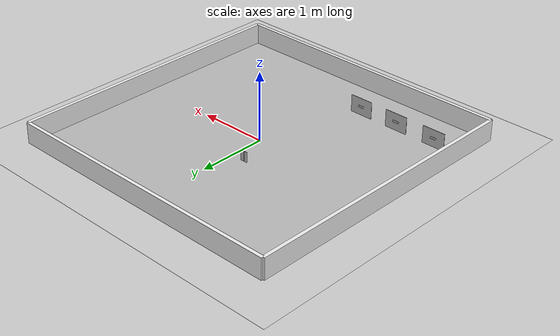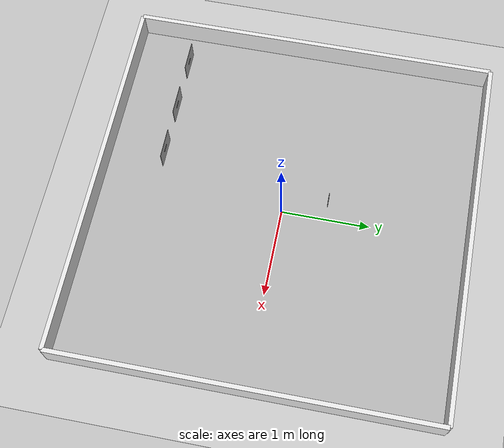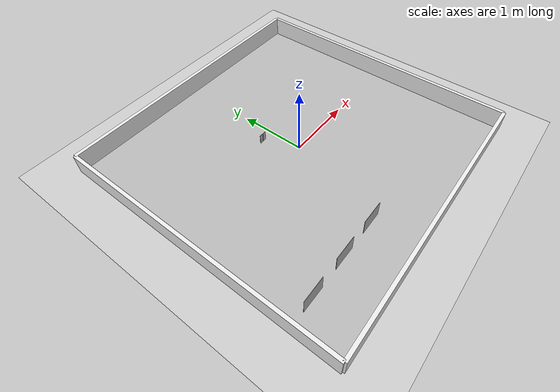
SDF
<sdf version="1.7">
 <world name="default">
  <model name="ground_plane">
   <static>1</static>
   <link name="link">
    <collision name="collision">
     <geometry><plane><normal>0 0 1</normal><size>100 100</size></plane></geometry>
     <surface><friction><ode><mu>100</mu><mu2>50</mu2></ode></friction></surface>
    </collision>
    <visual name="visual">
     <cast_shadows>0</cast_shadows>
     <geometry><plane><normal>0 0 1</normal><size>100 100</size></plane></geometry>
     <material>
      <script><uri>file://media/materials/scripts/gazebo.material</uri><name>Gazebo/Grey</name></script>
     </material>
    </visual>
   </link>
  </model>
  <model name="ground_map">
   <static>1</static>
   <pose>0 0 -0.024 0 -0 0</pose>
   <link name="link">
    <collision name="collision"><geometry><box><size>4.2 4.2 0.05</size></box></geometry></collision>
    <visual name="visual">
     <geometry><box><size>4.2 4.2 0.05</size></box></geometry>
     <material>
      <script>
       <uri>model://ground_map/materials/scripts</uri>
       <uri>model://ground_map/materials/textures</uri>
       <name>ground_map</name>
      </script>
     </material>
    </visual>
   </link>
  </model>
  <model name="vehicle_board">
   <static>1</static>
   <pose>-1.685 -1.45 0.125 0 -0 0</pose>
   <link name="board">
    <collision name="collision"><geometry><box><size>0.345 0.005 0.25</size></box></geometry></collision>
    <visual name="visual">
     <geometry><box><size>0.345 0.005 0.25</size></box></geometry>
     <material>
      <script>
       <uri>model://vehicle_board/materials/scripts</uri>
       <uri>model://vehicle_board/materials/textures</uri>
       <name>vehicle_board</name>
      </script>
     </material>
    </visual>
   </link>
  </model>
  <model name="vehicle_board_0">
   <static>1</static>
   <pose>-1.075 -1.45 0.125 0 -0 0</pose>
   <link name="board">
    <collision name="collision"><geometry><box><size>0.345 0.005 0.25</size></box></geometry></collision>
    <visual name="visual">
     <geometry><box><size>0.345 0.005 0.25</size></box></geometry>
     <material>
      <script>
       <uri>model://vehicle_board/materials/scripts</uri>
       <uri>model://vehicle_board/materials/textures</uri>
       <name>vehicle_board</name>
      </script>
     </material>
    </visual>
   </link>
  </model>
  <model name="vehicle_board_1">
   <static>1</static>
   <pose>-0.485 -1.45 0.125 0 -0 0</pose>
   <link name="board">
    <collision name="collision"><geometry><box><size>0.345 0.005 0.25</size></box></geometry></collision>
    <visual name="visual">
     <geometry><box><size>0.345 0.005 0.25</size></box></geometry>
     <material>
      <script>
       <uri>model://vehicle_board/materials/scripts</uri>
       <uri>model://vehicle_board/materials/textures</uri>
       <name>vehicle_board</name>
      </script>
     </material>
    </visual>
   </link>
  </model>
  <model name="cm14">
   <static>1</static>
   <pose>-0.24 0.5 0.075 0 -0 0</pose>
   <link name="cm14">
    <collision name="collision"><geometry><box><size>0.05 0.005 0.15</size></box></geometry></collision>
    <visual name="visual">
     <geometry><box><size>0.05 0.005 0.15</size></box></geometry>
     <material>
      <script>
       <uri>model://cm14/materials/scripts/cm14.material</uri>
       <uri>model://cm14/materials/textures/cm14.png</uri>
       <name>cm14</name>
      </script>
     </material>
    </visual>
   </link>
  </model>
  <model name="ncm2">
   <static>1</static>
   <pose>-0.18 0.5 0.075 0 -0 0</pose>
   <link name="ncm2">
    <collision name="collision"><geometry><box><size>0.05 0.005 0.15</size></box></geometry></collision>
    <visual name="visual">
     <geometry><box><size>0.05 0.005 0.15</size></box></geometry>
     <material>
      <script>
       <uri>model://ncm2/materials/scripts/ncm2.material</uri>
       <uri>model://ncm2/materials/textures/ncm2.png</uri>
       <name>ncm2</name>
      </script>
     </material>
    </visual>
   </link>
  </model>
  <model name="car_plate1">
   <static>1</static>
   <pose>-1.682 -1.4475 0.125 0 -0 0</pose>
   <link name="car_plate1">
    <collision name="collision"><geometry><box><size>0.095 0.001 0.03</size></box></geometry></collision>
    <visual name="visual">
     <geometry><box><size>0.095 0.001 0.03</size></box></geometry>
     <material>
      <script>
       <uri>model://car_plate1/materials/scripts</uri>
       <uri>model://car_plate1/materials/textures</uri>
       <name>car_plate1</name>
      </script>
     </material>
    </visual>
   </link>
  </model>
  <model name="random_plate1">
   <static>1</static>
   <pose>-1.072 -1.4475 0.125 0 -0 0</pose>
   <link name="random_plate1">
    <collision name="collision"><geometry><box><size>0.095 0.001 0.03</size></box></geometry></collision>
    <visual name="visual">
     <geometry><box><size>0.095 0.001 0.03</size></box></geometry>
     <material>
      <script>
       <uri>model://random_plate1/materials/scripts</uri>
       <uri>model://random_plate1/materials/textures</uri>
       <name>random_plate1</name>
      </script>
     </material>
    </visual>
   </link>
  </model>
  <model name="random_plate2">
   <static>1</static>
   <pose>-0.4825 -1.4475 0.125 0 -0 0</pose>
   <link name="random_plate2">
    <collision name="collision"><geometry><box><size>0.095 0.001 0.03</size></box></geometry></collision>
    <visual name="visual">
     <geometry><box><size>0.095 0.001 0.03</size></box></geometry>
     <material>
      <script>
       <uri>model://random_plate2/materials/scripts</uri>
       <uri>model://random_plate2/materials/textures</uri>
       <name>random_plate2</name>
      </script>
     </material>
    </visual>
   </link>
  </model>
  <model name="field_frame">
   <static>1</static>
   <link name="wall_north">
    <pose>0 2.1 0.15 0 -0 0</pose>
    <collision name="collision"><geometry><box><size>4.2 0.05 0.3</size></box></geometry></collision>
    <visual name="visual">
     <geometry><box><size>4.2 0.05 0.3</size></box></geometry>
     <material>
      <script><uri>file://media/materials/scripts/gazebo.material</uri><name>Gazebo/White</name></script>
     </material>
    </visual>
   </link>
   <link name="wall_south">
    <pose>0 -2.1 0.15 0 -0 0</pose>
    <collision name="collision"><geometry><box><size>4.2 0.05 0.3</size></box></geometry></collision>
    <visual name="visual">
     <geometry><box><size>4.2 0.05 0.3</size></box></geometry>
     <material>
      <script><uri>file://media/materials/scripts/gazebo.material</uri><name>Gazebo/White</name></script>
     </material>
    </visual>
   </link>
   <link name="wall_east">
    <pose>2.1 0 0.15 0 -0 0</pose>
    <collision name="collision"><geometry><box><size>0.05 4.2 0.3</size></box></geometry></collision>
    <visual name="visual">
     <geometry><box><size>0.05 4.2 0.3</size></box></geometry>
     <material>
      <script><uri>file://media/materials/scripts/gazebo.material</uri><name>Gazebo/White</name></script>
     </material>
    </visual>
   </link>
   <link name="wall_west">
    <pose>-2.1 0 0.15 0 -0 0</pose>
    <collision name="collision"><geometry><box><size>0.05 4.2 0.3</size></box></geometry></collision>
    <visual name="visual">
     <geometry><box><size>0.05 4.2 0.3</size></box></geometry>
     <material>
      <script><uri>file://media/materials/scripts/gazebo.material</uri><name>Gazebo/White</name></script>
     </material>
    </visual>
   </link>
  </model>
 </world>
</sdf>
